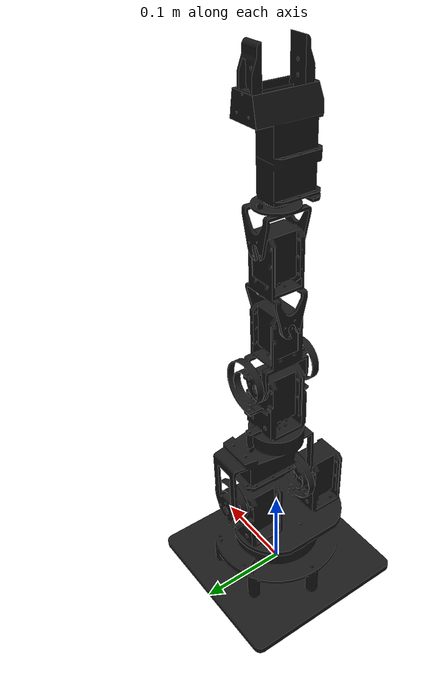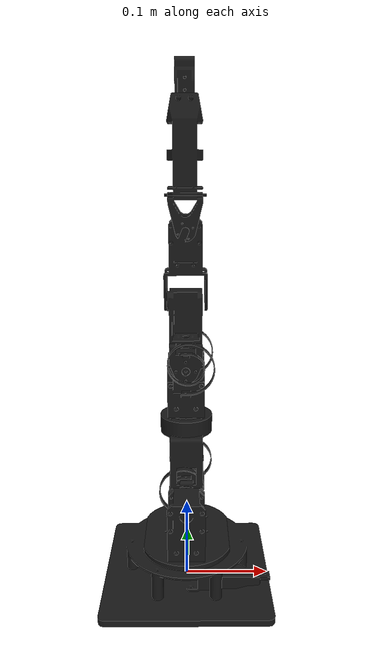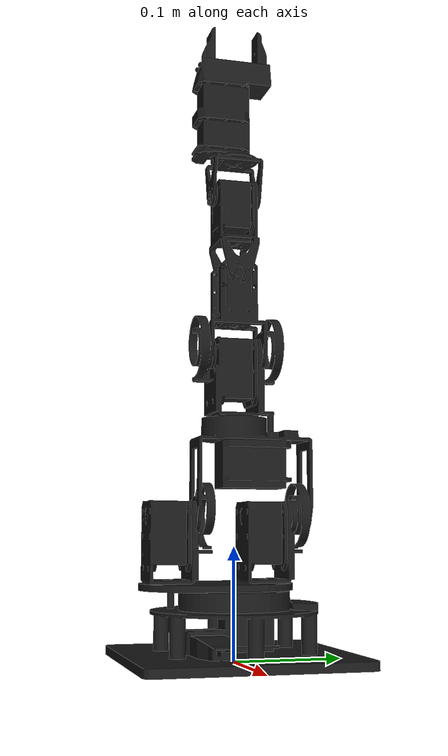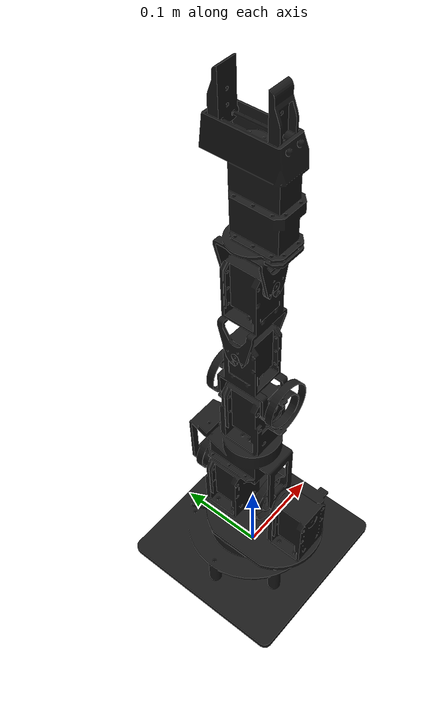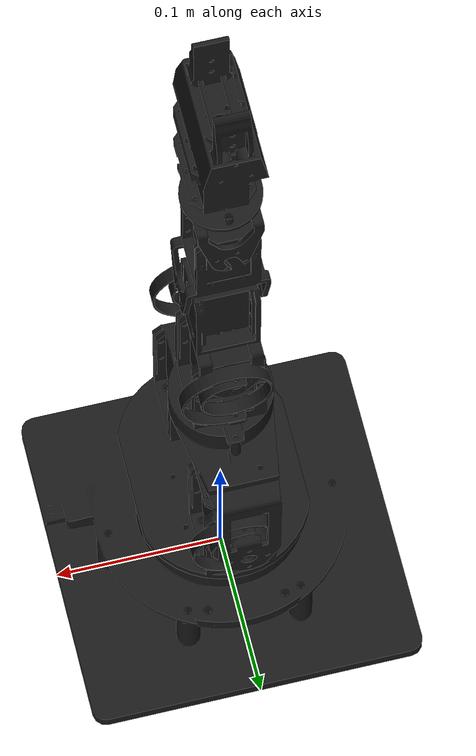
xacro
<robot
  name="cool1000_description">
  <link
    name="arm_base_link">
    <inertial>
      <origin
        xyz="0.0025008 -0.00040911 0.020867"
        rpy="0 0 0" />
      <mass
        value="0.59584" />
      <inertia
        ixx="0.0016223"
        ixy="-4.778E-05"
        ixz="-4.76E-06"
        iyy="0.0016219"
        iyz="1.7931E-05"
        izz="0.0027169" />
    </inertial>
    <visual>
      <origin
        xyz="0 0 0"
        rpy="0 0 0" />
      <geometry>
        <mesh
          filename="package://cool1000_description/meshes/arm_base_link.STL" />
      </geometry>
      <material
        name="">
        <color
          rgba="0.09803 0.09803 0.09803 1" />
      </material>
    </visual>
    <collision>
      <origin
        xyz="0 0 0"
        rpy="0 0 0" />
      <geometry>
        <mesh
          filename="package://cool1000_description/meshes/arm_base_link.STL" />
      </geometry>
    </collision>
  </link>
  <link
    name="link1">
    <inertial>
      <origin
        xyz="0.012509 2.7441E-05 0.049639"
        rpy="0 0 0" />
      <mass
        value="0.25526" />
      <inertia
        ixx="0.00023408"
        ixy="1.7779E-07"
        ixz="-2.7415E-05"
        iyy="0.00068215"
        iyz="-2.1813E-07"
        izz="0.0005853" />
    </inertial>
    <visual>
      <origin
        xyz="0 0 0"
        rpy="0 0 0" />
      <geometry>
        <mesh
          filename="package://cool1000_description/meshes/link1.STL" />
      </geometry>
      <material
        name="">
        <color
          rgba="0.09803 0.09803 0.09803 1" />
      </material>
    </visual>
    <collision>
      <origin
        xyz="0 0 0"
        rpy="0 0 0" />
      <geometry>
        <mesh
          filename="package://cool1000_description/meshes/link1.STL" />
      </geometry>
    </collision>
  </link>
  <joint
    name="joint1"
    type="revolute">
    <origin
      xyz="0 0 0.047002"
      rpy="0 0 -1.5708" />
    <parent
      link="arm_base_link" />
    <child
      link="link1" />
    <axis
      xyz="0 0 -1" />
    <limit
      lower="-2.617"
      upper="2.617"
      effort="10"
      velocity="10" />
    <dynamics
      damping="1"
      friction="0" />
  </joint>
  <link
    name="link2">
    <inertial>
      <origin
        xyz="-0.012468 8.4775E-08 0.056546"
        rpy="0 0 0" />
      <mass
        value="0.15994" />
      <inertia
        ixx="0.0001033"
        ixy="-1.1899E-06"
        ixz="1.4336E-05"
        iyy="0.00017682"
        iyz="-3.0046E-10"
        izz="0.00012114" />
    </inertial>
    <visual>
      <origin
        xyz="0 0 0"
        rpy="0 0 0" />
      <geometry>
        <mesh
          filename="package://cool1000_description/meshes/link2.STL" />
      </geometry>
      <material
        name="">
        <color
          rgba="0.09803 0.09803 0.09803 1" />
      </material>
    </visual>
    <collision>
      <origin
        xyz="0 0 0"
        rpy="0 0 0" />
      <geometry>
        <mesh
          filename="package://cool1000_description/meshes/link2.STL" />
      </geometry>
    </collision>
  </link>
  <joint
    name="joint2"
    type="revolute">
    <origin
      xyz="0 0 0.080098"
      rpy="0.0014078 0 0" />
    <parent
      link="link1" />
    <child
      link="link2" />
    <axis
      xyz="-1 0 0" />
    <limit
      lower="-1.51"
      upper="1.51"
      effort="10"
      velocity="10" />
    <dynamics
      damping="1"
      friction="0" />
  </joint>
  <link
    name="link3">
    <inertial>
      <origin
        xyz="0.00033799 -3.3709E-13 0.05506"
        rpy="0 0 0" />
      <mass
        value="0.094737" />
      <inertia
        ixx="4.6661E-05"
        ixy="-8.3316E-18"
        ixz="-1.3753E-06"
        iyy="5.724E-05"
        iyz="-6.333E-17"
        izz="3.0064E-05" />
    </inertial>
    <visual>
      <origin
        xyz="0 0 0"
        rpy="0 0 0" />
      <geometry>
        <mesh
          filename="package://cool1000_description/meshes/link3.STL" />
      </geometry>
      <material
        name="">
        <color
          rgba="0.09803 0.09803 0.09803 1" />
      </material>
    </visual>
    <collision>
      <origin
        xyz="0 0 0"
        rpy="0 0 0" />
      <geometry>
        <mesh
          filename="package://cool1000_description/meshes/link3.STL" />
      </geometry>
    </collision>
  </link>
  <joint
    name="joint3"
    type="revolute">
    <origin
      xyz="-9.9688E-05 0 0.07258"
      rpy="-7.0451E-16 -1.4078E-09 -3.1416" />
    <parent
      link="link2" />
    <child
      link="link3" />
    <axis
      xyz="0 0 -1" />
    <limit
      lower="-2.617"
      upper="2.617"
      effort="10"
      velocity="10" />
    <dynamics
      damping="1"
      friction="0" />
  </joint>
  <link
    name="link4">
    <inertial>
      <origin
        xyz="5.1726E-05 -0.00020169 0.049677"
        rpy="0 0 0" />
      <mass
        value="0.064903" />
      <inertia
        ixx="4.8255E-05"
        ixy="7.7645E-12"
        ixz="1.8579E-10"
        iyy="5.2526E-05"
        iyz="1.7525E-06"
        izz="2.2147E-05" />
    </inertial>
    <visual>
      <origin
        xyz="0 0 0"
        rpy="0 0 0" />
      <geometry>
        <mesh
          filename="package://cool1000_description/meshes/link4.STL" />
      </geometry>
      <material
        name="">
        <color
          rgba="0.09803 0.09803 0.09803 1" />
      </material>
    </visual>
    <collision>
      <origin
        xyz="0 0 0"
        rpy="0 0 0" />
      <geometry>
        <mesh
          filename="package://cool1000_description/meshes/link4.STL" />
      </geometry>
    </collision>
  </link>
  <joint
    name="joint4"
    type="revolute">
    <origin
      xyz="0 0 0.0756"
      rpy="0.00047251 1.8256E-18 1.4533E-16" />
    <parent
      link="link3" />
    <child
      link="link4" />
    <axis
      xyz="1 0 0" />
    <limit
      lower="-1.91"
      upper="1.91"
      effort="10"
      velocity="10" />
    <dynamics
      damping="1"
      friction="0" />
  </joint>
  <link
    name="link5">
    <inertial>
      <origin
        xyz="-0.00048971 -0.00019645 0.058588"
        rpy="0 0 0" />
      <mass
        value="0.058288" />
      <inertia
        ixx="3.2343E-05"
        ixy="-2.1864E-09"
        ixz="-5.5709E-07"
        iyy="3.3707E-05"
        iyz="-8.298E-09"
        izz="1.3619E-05" />
    </inertial>
    <visual>
      <origin
        xyz="0 0 0"
        rpy="0 0 0" />
      <geometry>
        <mesh
          filename="package://cool1000_description/meshes/link5.STL" />
      </geometry>
      <material
        name="">
        <color
          rgba="0.09803 0.09803 0.09803 1" />
      </material>
    </visual>
    <collision>
      <origin
        xyz="0 0 0"
        rpy="0 0 0" />
      <geometry>
        <mesh
          filename="package://cool1000_description/meshes/link5.STL" />
      </geometry>
    </collision>
  </link>
  <joint
    name="joint5"
    type="revolute">
    <origin
      xyz="5.1836E-05 0 0.074004"
      rpy="0 -4.1277E-16 4.4131E-13" />
    <parent
      link="link4" />
    <child
      link="link5" />
    <axis
      xyz="0 1 0" />
    <limit
      lower="-1.91"
      upper="1.91"
      effort="10"
      velocity="10" />
    <dynamics
      damping="1"
      friction="0" />
  </joint>
  <link
    name="link6">
    <inertial>
      <origin
        xyz="-7.0358E-05 -7.9344E-05 0.026287"
        rpy="0 0 0" />
      <mass
        value="0.012172" />
      <inertia
        ixx="3.3095E-06"
        ixy="7.7004E-11"
        ixz="1.1212E-08"
        iyy="4.9286E-06"
        iyz="3.1423E-08"
        izz="4.4692E-06" />
    </inertial>
    <visual>
      <origin
        xyz="0 0 0"
        rpy="0 0 0" />
      <geometry>
        <mesh
          filename="package://cool1000_description/meshes/link6.STL" />
      </geometry>
      <material
        name="">
        <color
          rgba="0.09803 0.09803 0.09803 1" />
      </material>
    </visual>
    <collision>
      <origin
        xyz="0 0 0"
        rpy="0 0 0" />
      <geometry>
        <mesh
          filename="package://cool1000_description/meshes/link6.STL" />
      </geometry>
    </collision>
  </link>
  <joint
    name="joint6"
    type="revolute">
    <origin
      xyz="0 -0.00020696 0.078488"
      rpy="-3.7237E-10 -3.706E-25 -1.3874E-15" />
    <parent
      link="link5" />
    <child
      link="link6" />
    <axis
      xyz="1 0 0" />
    <limit
      lower="-1.91"
      upper="1.91"
      effort="10"
      velocity="10" />
    <dynamics
      damping="1"
      friction="0" />
  </joint>
  <link
    name="link7">
    <inertial>
      <origin
        xyz="-0.010437 2.3015E-05 0.046336"
        rpy="0 0 0" />
      <mass
        value="0.10308" />
      <inertia
        ixx="6.9221E-05"
        ixy="6.0734E-09"
        ixz="4.8227E-06"
        iyy="8.6341E-05"
        iyz="1.8346E-08"
        izz="3.1578E-05" />
    </inertial>
    <visual>
      <origin
        xyz="0 0 0"
        rpy="0 0 0" />
      <geometry>
        <mesh
          filename="package://cool1000_description/meshes/link7.STL" />
      </geometry>
      <material
        name="">
        <color
          rgba="0.098039 0.098039 0.098039 1" />
      </material>
    </visual>
    <collision>
      <origin
        xyz="0 0 0"
        rpy="0 0 0" />
      <geometry>
        <mesh
          filename="package://cool1000_description/meshes/link7.STL" />
      </geometry>
    </collision>
  </link>
  <joint
    name="joint7"
    type="revolute">
    <origin
      xyz="-7.6239E-05 0 0.0335"
      rpy="-4.6762E-16 9.3533E-10 -1E-06" />
    <parent
      link="link6" />
    <child
      link="link7" />
    <axis
      xyz="0 0 -1" />
    <limit
      lower="-2.617"
      upper="2.617"
      effort="10"
      velocity="10" />
    <dynamics
      damping="1"
      friction="0" />
  </joint>
  <link
    name="gripper_link1">
    <inertial>
      <origin
        xyz="0.06468 -0.70953 0.065169"
        rpy="0 0 0" />
      <mass
        value="0.0045031" />
      <inertia
        ixx="9.3388E-07"
        ixy="-5.3243E-08"
        ixz="-6.8251E-10"
        iyy="2.0857E-07"
        iyz="3.3957E-10"
        izz="7.8431E-07" />
    </inertial>
    <visual>
      <origin
        xyz="0 0 0"
        rpy="0 0 0" />
      <geometry>
        <mesh
          filename="package://cool1000_description/meshes/gripper_link1.STL" />
      </geometry>
      <material
        name="">
        <color
          rgba="0.098039 0.098039 0.098039 1" />
      </material>
    </visual>
    <collision>
      <origin
        xyz="0 0 0"
        rpy="0 0 0" />
      <geometry>
        <mesh
          filename="package://cool1000_description/meshes/gripper_link1.STL" />
      </geometry>
    </collision>
  </link>
  <joint
    name="gripper_joint1"
    type="prismatic">
    <origin
      xyz="0.088903 0.065852 -0.60235"
      rpy="-1.5717 -1.298E-18 3.1416" />
    <parent
      link="link7" />
    <child
      link="gripper_link1" />
    <axis
      xyz="-1 0 0" />
    <limit
      lower="-0.02"
      upper="0"
      effort="10"
      velocity="10" />
  </joint>
  <link
    name="gripper_link2">
    <inertial>
      <origin
        xyz="0.11301 -0.70953 0.065055"
        rpy="0 0 0" />
      <mass
        value="0.0045031" />
      <inertia
        ixx="9.3388E-07"
        ixy="5.484E-08"
        ixz="-5.7472E-10"
        iyy="2.0889E-07"
        iyz="7.3745E-10"
        izz="7.8463E-07" />
    </inertial>
    <visual>
      <origin
        xyz="0 0 0"
        rpy="0 0 0" />
      <geometry>
        <mesh
          filename="package://cool1000_description/meshes/gripper_link2.STL" />
      </geometry>
      <material
        name="">
        <color
          rgba="0.098039 0.098039 0.098039 1" />
      </material>
    </visual>
    <collision>
      <origin
        xyz="0 0 0"
        rpy="0 0 0" />
      <geometry>
        <mesh
          filename="package://cool1000_description/meshes/gripper_link2.STL" />
      </geometry>
    </collision>
  </link>
  <joint
    name="gripper_joint2"
    type="prismatic">
    <origin
      xyz="0.088903 0.065852 -0.60235"
      rpy="-1.5717 -1.298E-18 3.1416" />
    <parent
      link="link7" />
    <child
      link="gripper_link2" />
    <axis
      xyz="-1 0 0" />
    <limit
      lower="0"
      upper="0.02"
      effort="10"
      velocity="10" />
    <dynamics
      damping="1"
      friction="0" />
  </joint>
</robot>
